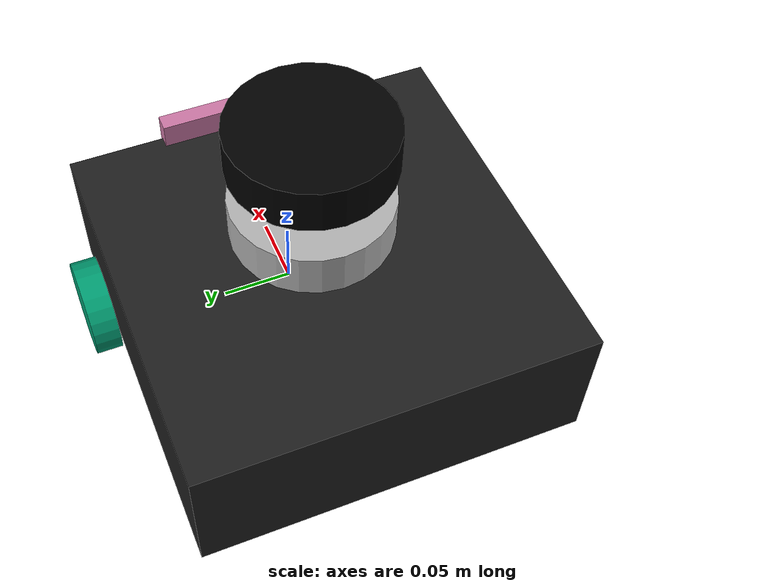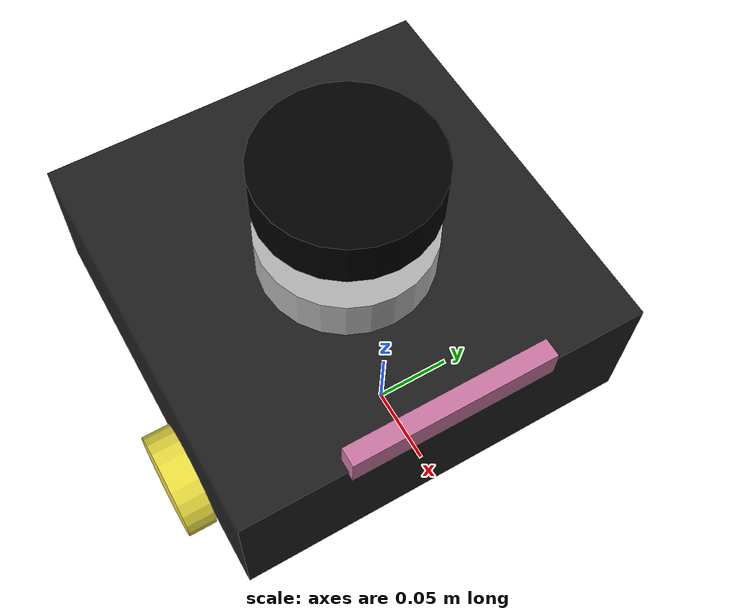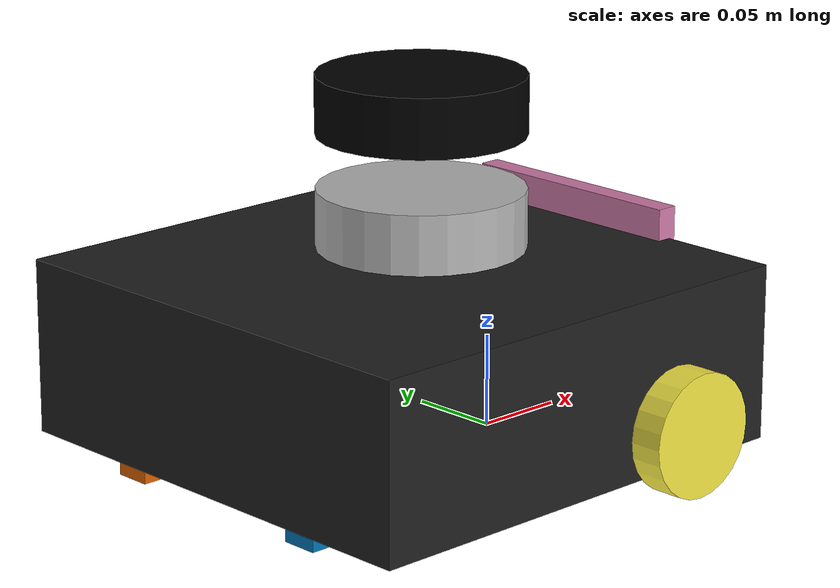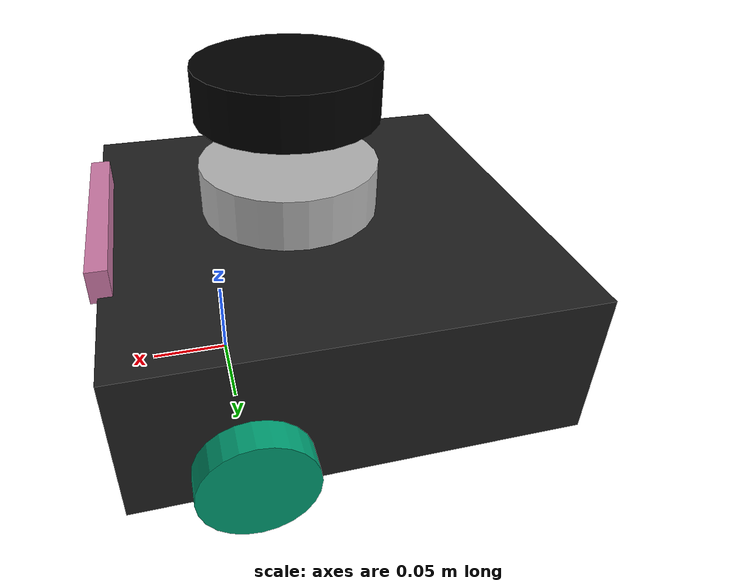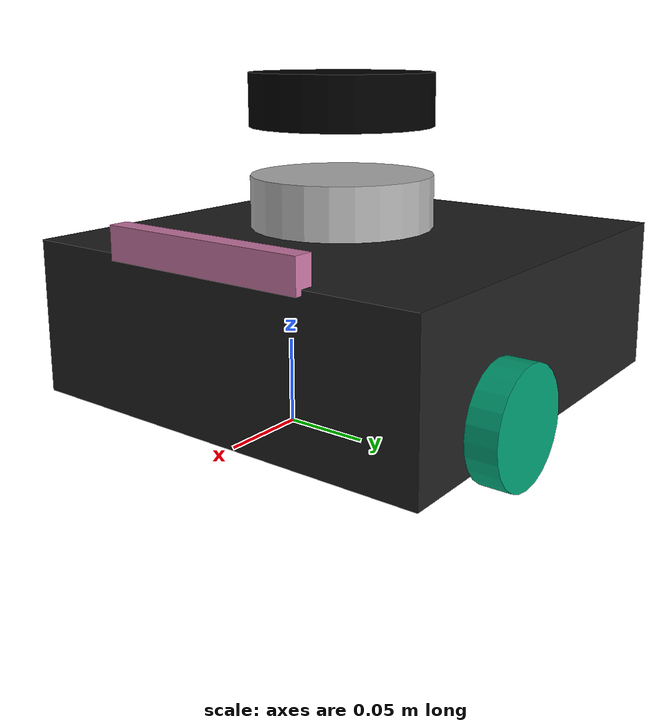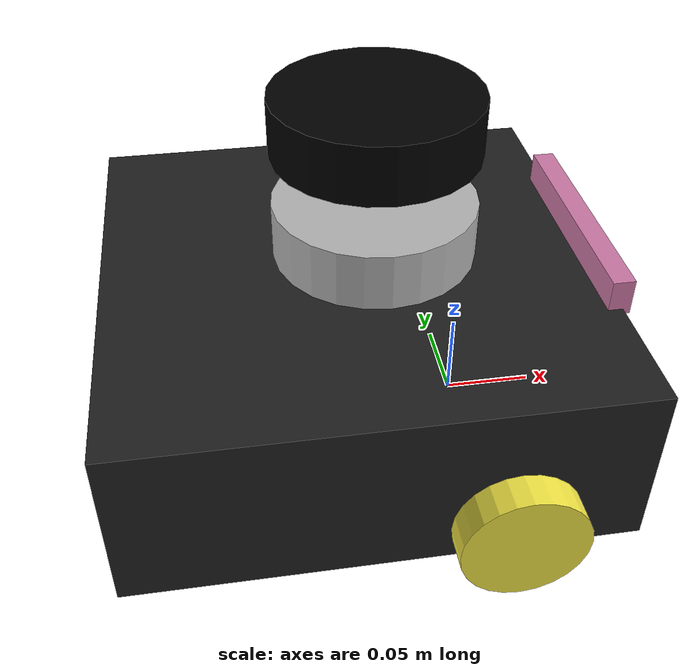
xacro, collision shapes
<?xml version="1.0" ?>
<robot name="turtlebot3_waffle" xmlns:xacro="http://ros.org/wiki/xacro">
  <xacro:include filename="$(find turtlebot3_description)/urdf/common_properties.xacro"/>
  <xacro:include filename="$(find turtlebot3_description)/urdf/turtlebot3_waffle.gazebo.xacro"/>

  <xacro:property name="r200_cam_rgb_px" value="0.005"/>
  <xacro:property name="r200_cam_rgb_py" value="0.018"/>
  <xacro:property name="r200_cam_rgb_pz" value="0.013"/>
  <xacro:property name="r200_cam_depth_offset" value="0.01"/>

  <link name="base_footprint"/>

  <joint name="base_joint" type="fixed">
    <parent link="base_footprint"/>
    <child link="base_link" />
    <origin xyz="0 0 0.010" rpy="0 0 0"/>
  </joint>

  <link name="base_link">
    <visual>
      <origin xyz="-0.064 0 0.0" rpy="0 0 0"/>
      <geometry>
        <mesh filename="package://turtlebot3_description/meshes/bases/waffle_base.stl" scale="0.001 0.001 0.001"/>
      </geometry>
      <material name="light_black"/>
    </visual>

    <collision>
      <origin xyz="-0.064 0 0.047" rpy="0 0 0"/>
      <geometry>
        <box size="0.266 0.266 0.094"/>
      </geometry>
    </collision>

    <inertial>
      <origin xyz="0 0 0" rpy="0 0 0"/>
      <mass value="1.3729096e+00"/>
      <inertia ixx="8.7002718e-03" ixy="-4.7576583e-05" ixz="1.1160499e-04"
               iyy="8.6195418e-03" iyz="-3.5422299e-06"
               izz="1.4612727e-02" />
    </inertial>
  </link>

  <joint name="wheel_left_joint" type="continuous">
    <parent link="base_link"/>
    <child link="wheel_left_link"/>
    <origin xyz="0.0 0.144 0.023" rpy="-1.57 0 0"/>
    <axis xyz="0 0 1"/>
  </joint>

  <link name="wheel_left_link">
    <visual>
      <origin xyz="0 0 0" rpy="1.57 0 0"/>
      <geometry>
        <mesh filename="package://turtlebot3_description/meshes/wheels/left_tire.stl" scale="0.001 0.001 0.001"/>
      </geometry>
      <material name="dark"/>
    </visual>

    <collision>
      <origin xyz="0 0 0" rpy="0 0 0"/>
      <geometry>
        <cylinder length="0.018" radius="0.033"/>
      </geometry>
    </collision>

    <inertial>
      <origin xyz="0 0 0" />
      <mass value="2.8498940e-02" />
      <inertia ixx="1.1175580e-05" ixy="-4.2369783e-11" ixz="-5.9381719e-09"
               iyy="1.1192413e-05" iyz="-1.4400107e-11"
               izz="2.0712558e-05" />
      </inertial>
  </link>

  <joint name="wheel_right_joint" type="continuous">
    <parent link="base_link"/>
    <child link="wheel_right_link"/>
    <origin xyz="0.0 -0.144 0.023" rpy="-1.57 0 0"/>
    <axis xyz="0 0 1"/>
  </joint>

  <link name="wheel_right_link">
    <visual>
      <origin xyz="0 0 0" rpy="1.57 0 0"/>
      <geometry>
        <mesh filename="package://turtlebot3_description/meshes/wheels/right_tire.stl" scale="0.001 0.001 0.001"/>
      </geometry>
      <material name="dark"/>
    </visual>

    <collision>
      <origin xyz="0 0 0" rpy="0 0 0"/>
      <geometry>
        <cylinder length="0.018" radius="0.033"/>
      </geometry>
    </collision>

    <inertial>
      <origin xyz="0 0 0" />
      <mass value="2.8498940e-02" />
      <inertia ixx="1.1175580e-05" ixy="-4.2369783e-11" ixz="-5.9381719e-09"
               iyy="1.1192413e-05" iyz="-1.4400107e-11"
               izz="2.0712558e-05" />
      </inertial>
  </link>

  <joint name="caster_back_right_joint" type="fixed">
    <parent link="base_link"/>
    <child link="caster_back_right_link"/>
    <origin xyz="-0.177 -0.064 -0.004" rpy="-1.57 0 0"/>
  </joint>

  <link name="caster_back_right_link">
    <collision>
      <origin xyz="0 0.001 0" rpy="0 0 0"/>
      <geometry>
        <box size="0.030 0.009 0.020"/>
      </geometry>
    </collision>

    <inertial>
      <origin xyz="0 0 0" />
      <mass value="0.005" />
      <inertia ixx="0.001" ixy="0.0" ixz="0.0"
               iyy="0.001" iyz="0.0"
               izz="0.001" />
    </inertial>
  </link>

  <joint name="caster_back_left_joint" type="fixed">
    <parent link="base_link"/>
    <child link="caster_back_left_link"/>
    <origin xyz="-0.177 0.064 -0.004" rpy="-1.57 0 0"/>
  </joint>

  <link name="caster_back_left_link">
    <collision>
      <origin xyz="0 0.001 0" rpy="0 0 0"/>
      <geometry>
        <box size="0.030 0.009 0.020"/>
      </geometry>
    </collision>

    <inertial>
      <origin xyz="0 0 0" />
      <mass value="0.005" />
      <inertia ixx="0.001" ixy="0.0" ixz="0.0"
               iyy="0.001" iyz="0.0"
               izz="0.001" />
    </inertial>
  </link>

  <joint name="imu_joint" type="fixed">
    <parent link="base_link"/>
    <child link="imu_link"/>
    <origin xyz="0.0 0 0.068" rpy="0 0 0"/>
  </joint>

  <link name="imu_link"/>

  <joint name="scan_joint" type="fixed">
    <parent link="base_link"/>
    <child link="base_scan"/>
    <origin xyz="-0.064 0 0.122" rpy="0 0 0"/>
  </joint>

  <link name="base_scan">
    <visual>
      <origin xyz="0 0 0" rpy="0 0 0"/>
      <geometry>
        <mesh filename="package://turtlebot3_description/meshes/sensors/lds.stl" scale="0.001 0.001 0.001"/>
      </geometry>
      <material name="dark"/>
    </visual>

    <collision>
      <origin xyz="0.015 0 -0.0065" rpy="0 0 0"/>
      <geometry>
        <cylinder length="0.0315" radius="0.055"/>
      </geometry>
    </collision>

    <inertial>
      <mass value="0.114" />
      <origin xyz="0 0 0" />
      <inertia ixx="0.001" ixy="0.0" ixz="0.0"
               iyy="0.001" iyz="0.0"
               izz="0.001" />
    </inertial>
  </link>

<gazebo reference="ball">
     <material>Gazebo/Blue</material>
     <turnGravityOff>false</turnGravityOff>
 </gazebo>

  <link name="ball">
    <visual>
      <origin xyz="0 0 0" rpy="0 0 0"/>
      <geometry>
          <cylinder length="0.1" radius="0.02">
      </cylinder>
      </geometry>
         <material name="m_Blue">
    <color rgba="0.0 0.0 0.0 1.0"/>
  </material>
    </visual>

    <collision>
      <origin xyz="0.015 0 -0.0065" rpy="0 0 0"/>
      <geometry>
        <cylinder length="0.0315" radius="0.055"/>
      </geometry>
    </collision>

    <inertial>
      <mass value="0.114" />
      <origin xyz="0 0 0" />
      <inertia ixx="0.001" ixy="0.0" ixz="0.0"
               iyy="0.001" iyz="0.0"
               izz="0.001" />
    </inertial>
  </link>

  <joint name="base_scan_ball" type="continuous">
    <parent link="base_scan"/>
    <child link="ball"/>
    <origin xyz="0.0 0.0 0.06" rpy="0 0 0"/>
    <axis xyz="0 0 1"/>
  </joint>

<gazebo reference="rec">
     <material>Gazebo/Dark</material>
     <turnGravityOff>false</turnGravityOff>
 </gazebo>

  <link name="rec">
    <visual>
      <origin xyz="0 0 0" rpy="0 0 0"/>
      <geometry>
          <mesh filename="package://multi-agents-formulation/len.stl" scale="0.05 0.06 0.05"/>
      </geometry>
         <material name="dark"/>
    </visual>

    <collision>
      <origin xyz="0.015 0 -0.0065" rpy="0 0 0"/>
      <geometry>
        <cylinder length="0.000001" radius="0.001"/>
      </geometry>
    </collision>

    <inertial>
      <mass value="0.004" />
      <origin xyz="0 0 0" />
      <inertia ixx="0.001" ixy="0.0" ixz="0.0"
               iyy="0.001" iyz="0.0"
               izz="0.001" />
    </inertial>
  </link>

  <joint name="base_link_rec" type="fixed">
    <parent link="base_link"/>
    <child link="rec"/>
    <origin xyz="-0.19 0.000 0.05" rpy="-1.57 0 1.57"/>
    <axis xyz="0 0 1"/>
  </joint>

<gazebo reference="feature1">
     <material>Gazebo/Red</material>
     <turnGravityOff>false</turnGravityOff>
 </gazebo>

  <link name="feature1">
    <visual>
      <origin xyz="0 0 0" rpy="0 0 0"/>
      <geometry>
          <mesh filename="package://multi-agents-formulation/fearure.stl" scale="0.025 0.025 0.025"/>
      </geometry>

 <material name="m_Red">
    <color rgba="0.0 0.0 0.8 1.0"/>
  </material>
    </visual>

    <collision>
      <origin xyz="0.00 0 -0.000" rpy="0 0 0"/>
      <geometry>
        <cylinder length="0.00" radius="0.00"/>
      </geometry>
    </collision>

    <inertial>
      <mass value="0.004" />
      <origin xyz="0 0 0" />
      <inertia ixx="0.001" ixy="0.0" ixz="0.0"
               iyy="0.001" iyz="0.0"
               izz="0.001" />
    </inertial>
  </link>

  <joint name="rec_link_f1" type="fixed">
    <parent link="rec"/>
    <child link="feature1"/>
    <origin xyz="0.05 0.025 0.02" rpy="0 0 0"/>
    <axis xyz="0 0 1"/>
  </joint>

<gazebo reference="feature2">
     <material>Gazebo/Red</material>
     <turnGravityOff>false</turnGravityOff>
 </gazebo>

  <link name="feature2">
    <visual>
      <origin xyz="0 0 0" rpy="0 0 0"/>
      <geometry>
          <mesh filename="package://multi-agents-formulation/fearure.stl" scale="0.025 0.025 0.025"/>
      </geometry>
           <material name="Red"/>
    </visual>

    <collision>
      <origin xyz="0.00 0 -0.000" rpy="0 0 0"/>
      <geometry>
        <cylinder length="0.00" radius="0.00"/>
      </geometry>
    </collision>

    <inertial>
      <mass value="0.004" />
      <origin xyz="0 0 0" />
      <inertia ixx="0.001" ixy="0.0" ixz="0.0"
               iyy="0.001" iyz="0.0"
               izz="0.001" />
    </inertial>
  </link>

  <joint name="rec_link_f2" type="fixed">
    <parent link="rec"/>
    <child link="feature2"/>
    <origin xyz="0.05 -0.040 0.02" rpy="0 0 0"/>
    <axis xyz="0 0 1"/>
  </joint>

<gazebo reference="feature3">
     <material>Gazebo/Red</material>
     <turnGravityOff>false</turnGravityOff>
 </gazebo>

  <link name="feature3">
    <visual>
      <origin xyz="0 0 0" rpy="0 0 0"/>
      <geometry>
          <mesh filename="package://multi-agents-formulation/fearure.stl" scale="0.025 0.025 0.025"/>
      </geometry>
           <material name="Red"/>
    </visual>

    <collision>
      <origin xyz="0.00 0 -0.000" rpy="0 0 0"/>
      <geometry>
        <cylinder length="0.00" radius="0.00"/>
      </geometry>
    </collision>

    <inertial>
      <mass value="0.004" />
      <origin xyz="0 0 0" />
      <inertia ixx="0.001" ixy="0.0" ixz="0.0"
               iyy="0.001" iyz="0.0"
               izz="0.001" />
    </inertial>
  </link>

  <joint name="rec_link_f3" type="fixed">
    <parent link="rec"/>
    <child link="feature3"/>
    <origin xyz="-0.05 -0.040 0.02" rpy="0 0 0"/>
    <axis xyz="0 0 1"/>
  </joint>

<gazebo reference="feature4">
     <material>Gazebo/Red</material>
     <turnGravityOff>false</turnGravityOff>
 </gazebo>

  <link name="feature4">
    <visual>
      <origin xyz="0 0 0" rpy="0 0 0"/>
      <geometry>
          <mesh filename="package://multi-agents-formulation/fearure.stl" scale="0.025 0.025 0.025"/>
      </geometry>
           <material name="Red"/>
    </visual>

    <collision>
      <origin xyz="0.00 0 -0.000" rpy="0 0 0"/>
      <geometry>
        <cylinder length="0.00" radius="0.00"/>
      </geometry>
    </collision>

    <inertial>
      <mass value="0.004" />
      <origin xyz="0 0 0" />
      <inertia ixx="0.001" ixy="0.0" ixz="0.0"
               iyy="0.001" iyz="0.0"
               izz="0.001" />
    </inertial>
  </link>

  <joint name="rec_link_f4" type="fixed">
    <parent link="rec"/>
    <child link="feature4"/>
    <origin xyz="-0.05 0.025 0.02" rpy="0 0 0"/>
    <axis xyz="0 0 1"/>
  </joint>

  <joint name="camera_joint" type="fixed">
    <origin xyz="0.064 -0.065 0.094" rpy="0 0 0"/>
    <parent link="base_link"/>
    <child link="camera_link"/>
  </joint>

  <link name="camera_link">
    <visual>
     <origin xyz="0 0 0" rpy="1.57 0 1.57"/>
      <geometry>
       <mesh filename="package://turtlebot3_description/meshes/sensors/r200.dae" />
      </geometry>
    </visual>
    <collision>
      <origin xyz="0.003 0.065 0.007" rpy="0 0 0"/>
      <geometry>
        <box size="0.012 0.132 0.020"/>
      </geometry>
    </collision>

    <!-- This inertial field needs doesn't contain reliable data!! -->
  </link>

  <joint name="camera_rgb_joint" type="fixed">
    <origin xyz="${r200_cam_rgb_px} ${r200_cam_rgb_py} ${r200_cam_rgb_pz}" rpy="0 0 0"/>
    <parent link="camera_link"/>
    <child link="camera_rgb_frame"/>
  </joint>
  <link name="camera_rgb_frame"/>

  <joint name="camera_rgb_optical_joint" type="fixed">
    <origin xyz="0 0 0" rpy="-1.57 0 -1.57"/>
    <parent link="camera_rgb_frame"/>
    <child link="camera_rgb_optical_frame"/>
  </joint>
  <link name="camera_rgb_optical_frame"/>

  <joint name="camera_depth_joint" type="fixed">
    <origin xyz="${r200_cam_rgb_px} ${r200_cam_rgb_py + r200_cam_depth_offset} ${r200_cam_rgb_pz}" rpy="0 0 0"/>
    <parent link="camera_link"/>
    <child link="camera_depth_frame"/>
  </joint>
  <link name="camera_depth_frame"/>

  <joint name="camera_depth_optical_joint" type="fixed">
    <origin xyz="0 0 0" rpy="-1.57 0 -1.57"/>
    <parent link="camera_depth_frame"/>
    <child link="camera_depth_optical_frame"/>
  </joint>
  <link name="camera_depth_optical_frame"/>

</robot>
